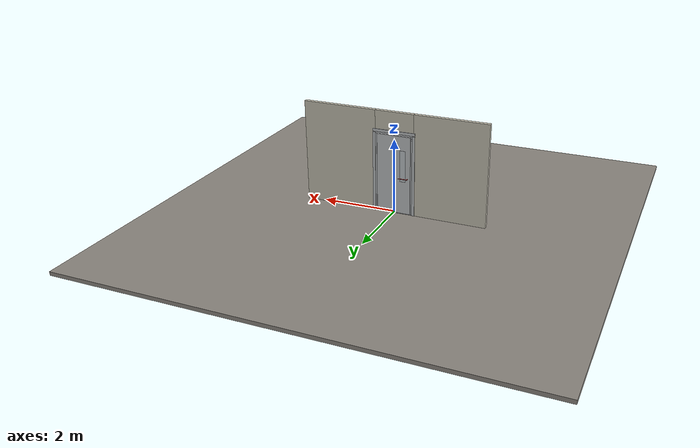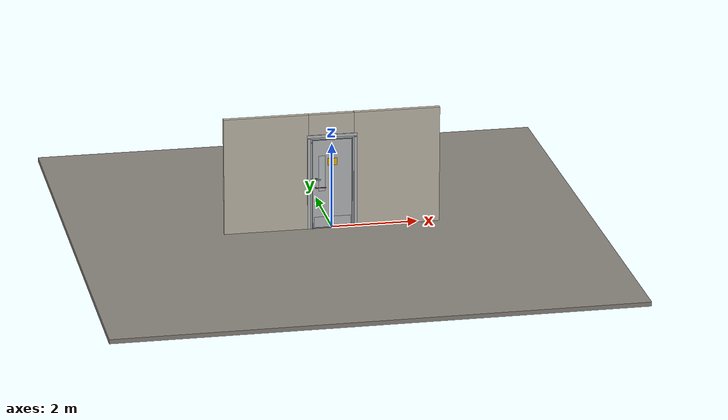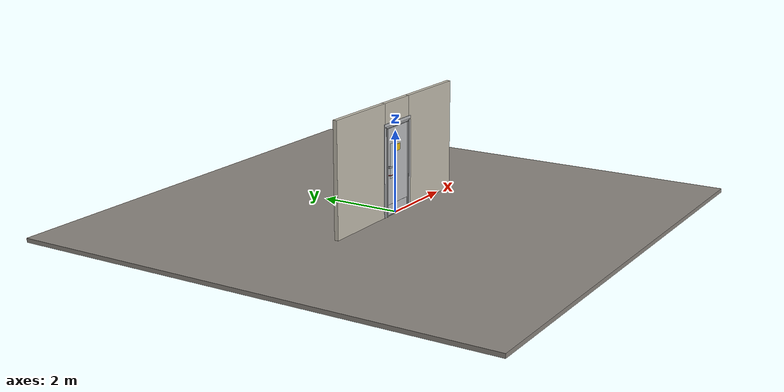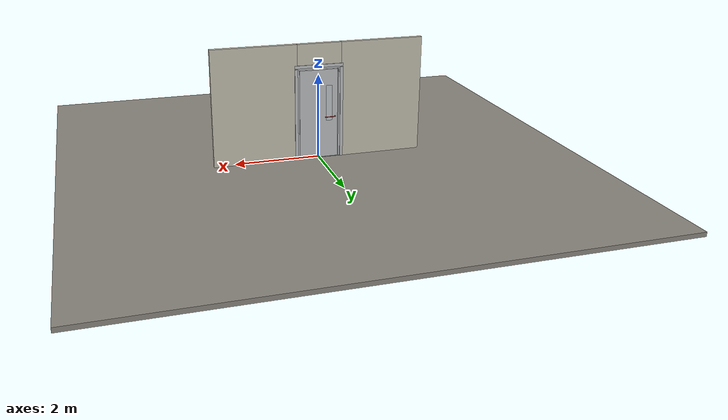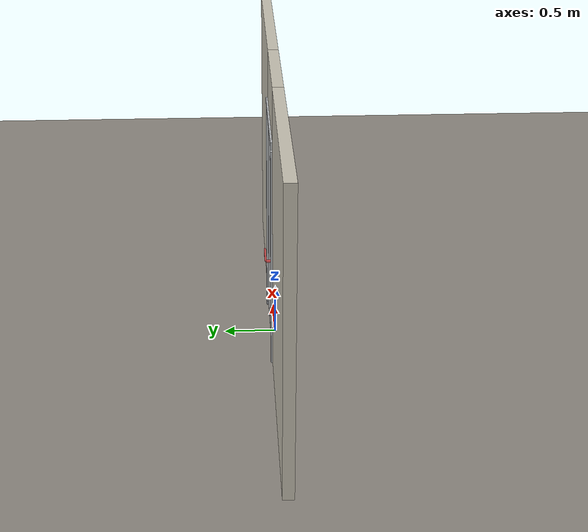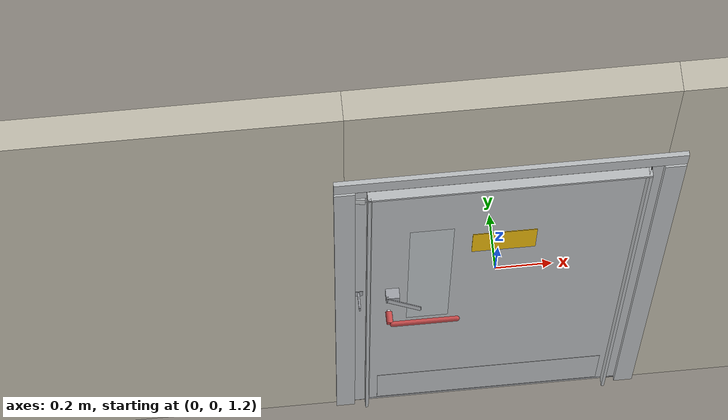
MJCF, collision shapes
<?xml version="1.0" ?>
<mujoco model="db0865_cold_storage_full">
  <compiler angle="radian" meshdir="../../hardware" texturedir="../../textures" autolimits="true" inertiafromgeom="false"/>
  <option timestep="0.002" integrator="implicitfast" cone="elliptic" impratio="10" noslip_iterations="3">
    <flag multiccd="enable"/>
  </option>
  <size memory="16M"/>
  <default>
    <geom condim="4" solref="0.005 1" solimp="0.95 0.99 0.001"/>
    <joint solreflimit="0.005 1" solimplimit="0.95 0.99 0.001"/>
    <tendon solreflimit="0.005 1"/>
    <equality solref="0.002 1"/>
  </default>
  <visual>
    <headlight ambient="0.4 0.4 0.4" diffuse="0.7 0.7 0.7" specular="0.2 0.2 0.2"/>
    <quality shadowsize="4096"/>
    <map znear="0.01" zfar="60"/>
  </visual>
  <asset>
    <mesh name="hinge_05d9a38dfa" file="hinge_05d9a38dfa.obj"/>
    <mesh name="hinge_jamb_953fb56768" file="hinge_jamb_953fb56768.obj"/>
    <mesh name="lever_40740b93f7" file="lever_40740b93f7.obj"/>
    <material name="mat_floor" rgba="0.55 0.53 0.5 1" specular="0.2" shininess="0.15" reflectance="0"/>
    <material name="mat_wall" rgba="0.78 0.76 0.7 1" specular="0.2" shininess="0.1" reflectance="0"/>
    <material name="mat_hinge" rgba="0.55 0.56 0.58 1" specular="0.8" shininess="0.55" reflectance="0.4"/>
    <material name="mat_leaf" rgba="0.75 0.76 0.77 1" specular="0.8" shininess="0.65" reflectance="0.4"/>
    <material name="mat_glass" rgba="0.85 0.92 0.95 0.25" specular="0.2" shininess="0.95" reflectance="0.1"/>
    <material name="mat_op_chrome" rgba="0.9 0.9 0.92 1" specular="0.8" shininess="0.9" reflectance="0.4"/>
    <material name="mat_trim" rgba="0.85 0.66 0.3 1" specular="0.8" shininess="0.75" reflectance="0.4"/>
    <material name="mat_bolt" rgba="0.75 0.76 0.77 1" specular="0.8" shininess="0.65" reflectance="0.4"/>
    <material name="mat_op_steel_galvanized" rgba="0.65 0.66 0.68 1" specular="0.74" shininess="0.5" reflectance="0.36"/>
    <material name="mat_padlock" rgba="0.85 0.66 0.3 1" specular="0.8" shininess="0.75" reflectance="0.4"/>
    <material name="mat_frame" rgba="0.75 0.76 0.77 1" specular="0.8" shininess="0.65" reflectance="0.4"/>
    <material name="mat_seal" rgba="0.1 0.1 0.1 1" specular="0.2" shininess="0.1" reflectance="0"/>
    <material name="mat_threshold" rgba="0.8 0.81 0.83 1" specular="0.8" shininess="0.6" reflectance="0.4"/>
    <material name="mat_kick" rgba="0.75 0.76 0.77 1" specular="0.8" shininess="0.65" reflectance="0.4"/>
    <material name="mat_placard" rgba="0.95 0.75 0.05 1" specular="0.2" shininess="0.5" reflectance="0"/>
    <texture name="skybox" type="skybox" builtin="gradient" rgb1="0.6 0.7 0.85" rgb2="0.9 0.92 0.95" width="256" height="256"/>
  </asset>
  <worldbody>
    <light name="sun" pos="1.5 -2.5 4" dir="-0.3 0.5 -0.8" directional="true" diffuse="0.8 0.8 0.8" specular="0.3 0.3 0.3" castshadow="true"/>
    <light name="fill" pos="-1.5 2.5 3" dir="0.3 -0.5 -0.7" directional="true" diffuse="0.35 0.35 0.4" castshadow="false"/>
    <camera name="robot_view" pos="0 -2.640625 1.814375" xyaxes="1 0 0 0 0.26963 0.962964" fovy="52"/>
    <camera name="far_view" pos="0 2.640625 1.814375" xyaxes="-1 0 0 0 -0.26963 0.962964" fovy="52"/>
    <camera name="iso" pos="-2.006875 -2.218125 2.236875" xyaxes="0.741536 -0.670913 0 0.242917 0.268487 0.932151" fovy="46"/>
    <camera name="detail_handle" pos="-0.003 -0.905 1.28" xyaxes="0.97561 0.219512 0 -0.070934 0.315262 0.94635" fovy="38"/>
    <geom name="floor" type="box" size="6 6 0.05" pos="0 0 -0.05" material="mat_floor" group="0" contype="1" conaffinity="1" friction="0.8 0.005 0.0001" density="2400"/>
    <geom name="wall_left" type="box" size="0.98 0.05 1.375" pos="-1.52 0 1.375" material="mat_wall" group="0" contype="1" conaffinity="1" friction="0.6 0.005 0.0001" density="800"/>
    <geom name="wall_right" type="box" size="0.995 0.05 1.375" pos="1.505 0 1.375" material="mat_wall" group="0" contype="1" conaffinity="1" friction="0.6 0.005 0.0001" density="800"/>
    <geom name="wall_header" type="box" size="0.525 0.05 0.2625" pos="-0.015 0 2.4875" material="mat_wall" group="0" contype="1" conaffinity="1" friction="0.6 0.005 0.0001" density="800"/>
    <geom name="hinge_0_jamb" type="mesh" mesh="hinge_jamb_953fb56768" pos="0.462 0.057 0.267" quat="0 0 0 1" material="mat_hinge" group="1" contype="0" conaffinity="0" density="7850"/>
    <geom name="hinge_1_jamb" type="mesh" mesh="hinge_jamb_953fb56768" pos="0.462 0.057 1.9504" quat="0 0 0 1" material="mat_hinge" group="1" contype="0" conaffinity="0" density="7850"/>
    <geom name="leaf_staple_leg_n" type="box" size="0.003 0.0025 0.03" pos="-0.492 -0.08 1.2125" quat="0 0 -0.707107 0.707107" material="mat_op_steel_galvanized" group="0" contype="1" conaffinity="1" friction="0.6 0.005 0.0001" density="7800"/>
    <geom name="leaf_staple_leg_p" type="box" size="0.003 0.0025 0.03" pos="-0.492 -0.08 1.1875" quat="0 0 -0.707107 0.707107" material="mat_op_steel_galvanized" group="0" contype="1" conaffinity="1" friction="0.6 0.005 0.0001" density="7800"/>
    <geom name="leaf_staple_bridge" type="box" size="0.003 0.015 0.0025" pos="-0.492 -0.1075 1.2" quat="0 0 -0.707107 0.707107" material="mat_op_steel_galvanized" group="0" contype="1" conaffinity="1" friction="0.6 0.005 0.0001" density="7800"/>
    <geom name="leaf_staple_base" type="box" size="0.016 0.021 0.001" pos="-0.492 -0.051 1.2" quat="0 0 -0.707107 0.707107" material="mat_op_steel_galvanized" group="1" contype="0" conaffinity="0" density="7800"/>
    <geom name="jamb_hinge" type="box" size="0.0225 0.05 1.075" pos="0.4875 0 1.075" material="mat_frame" group="0" contype="1" conaffinity="1" friction="0.6 0.005 0.0001" density="300"/>
    <geom name="strike_2080_wall_n" type="box" size="0.0375 0.02125 0.019" pos="-0.5025 -0.02875 2.0804" material="mat_frame" group="0" contype="1" conaffinity="1" friction="0.6 0.005 0.0001" density="300"/>
    <geom name="strike_2080_wall_p" type="box" size="0.0375 0.008 0.019" pos="-0.5025 0.0155 2.0804" material="mat_frame" group="0" contype="1" conaffinity="1" friction="0.6 0.005 0.0001" density="300"/>
    <geom name="strike_2080_ramp" type="box" size="0.0375 0.023512 0.019" pos="-0.505582 0.041168 2.0804" quat="0.997211 0 0 0.074638" material="mat_frame" group="0" contype="1" conaffinity="1" friction="0.12 0.005 0.0001" density="300"/>
    <geom name="strike_2080_ramp_n" type="box" size="0.0375 0.023512 0.019" pos="-0.505582 -0.029168 2.0804" quat="0.997211 0 0 -0.074638" material="mat_frame" group="0" contype="1" conaffinity="1" friction="0.12 0.005 0.0001" density="300"/>
    <geom name="strike_2080_back" type="box" size="0.0325 0.0075 0.019" pos="-0.5075 0 2.0804" material="mat_frame" group="0" contype="1" conaffinity="1" friction="0.6 0.005 0.0001" density="300"/>
    <geom name="jamb_strike_0" type="box" size="0.0375 0.05 1.0307" pos="-0.5025 0 1.0307" material="mat_frame" group="0" contype="1" conaffinity="1" friction="0.6 0.005 0.0001" density="300"/>
    <geom name="jamb_strike_1" type="box" size="0.0375 0.05 0.0253" pos="-0.5025 0 2.1247" material="mat_frame" group="0" contype="1" conaffinity="1" friction="0.6 0.005 0.0001" density="300"/>
    <geom name="jamb_head" type="box" size="0.525 0.05 0.0225" pos="-0.015 0 2.1725" material="mat_frame" group="0" contype="1" conaffinity="1" friction="0.6 0.005 0.0001" density="300"/>
    <geom name="head_stud" type="box" size="0.525 0.05 0.015" pos="-0.015 0 2.21" material="mat_wall" group="0" contype="1" conaffinity="1" friction="0.6 0.005 0.0001" density="500"/>
    <geom name="stop_hinge" type="box" size="0.0055 0.016 1.075" pos="0.4595 -0.0665 1.075" material="mat_frame" group="0" contype="1" conaffinity="1" friction="0.6 0.005 0.0001" density="300"/>
    <geom name="stop_strike" type="box" size="0.0055 0.016 1.075" pos="-0.4595 -0.0665 1.075" material="mat_frame" group="0" contype="1" conaffinity="1" friction="0.6 0.005 0.0001" density="300"/>
    <geom name="stop_head" type="box" size="0.465 0.016 0.0055" pos="0 -0.0665 2.1445" material="mat_frame" group="0" contype="1" conaffinity="1" friction="0.6 0.005 0.0001" density="300"/>
    <geom name="seal_hinge" type="box" size="0.004 0.005 1.075" pos="0.462 -0.055 1.075" material="mat_seal" group="1" contype="0" conaffinity="0" density="1100"/>
    <geom name="seal_strike" type="box" size="0.004 0.005 1.075" pos="-0.462 -0.055 1.075" material="mat_seal" group="1" contype="0" conaffinity="0" density="1100"/>
    <geom name="seal_head" type="box" size="0.445 0.005 0.008" pos="0 -0.055 2.138" material="mat_seal" group="1" contype="0" conaffinity="0" density="1100"/>
    <geom name="casing_l_n" type="box" size="0.035 0.008 1.0975" pos="-0.54 -0.058 1.075" material="mat_frame" group="2" contype="0" conaffinity="0" density="300"/>
    <geom name="casing_r_n" type="box" size="0.035 0.008 1.0975" pos="0.54 -0.058 1.075" material="mat_frame" group="2" contype="0" conaffinity="0" density="300"/>
    <geom name="casing_h_n" type="box" size="0.575 0.008 0.035" pos="0 -0.058 2.225" material="mat_frame" group="2" contype="0" conaffinity="0" density="300"/>
    <geom name="casing_l_p" type="box" size="0.035 0.008 1.0975" pos="-0.54 0.058 1.075" material="mat_frame" group="2" contype="0" conaffinity="0" density="300"/>
    <geom name="casing_r_p" type="box" size="0.035 0.008 1.0975" pos="0.54 0.058 1.075" material="mat_frame" group="2" contype="0" conaffinity="0" density="300"/>
    <geom name="casing_h_p" type="box" size="0.575 0.008 0.035" pos="0 0.058 2.225" material="mat_frame" group="2" contype="0" conaffinity="0" density="300"/>
    <geom name="threshold" type="box" size="0.51 0.05 0.0065" pos="0 0 0.0065" material="mat_threshold" group="0" contype="1" conaffinity="1" friction="0.5 0.005 0.0001" density="2700"/>
    <site name="approach_point" pos="0 -1.5 0" quat="1 0 0 0" size="0.05" rgba="0.2 0.9 0.2 0.5" group="4"/>
    <site name="goal_point" pos="0 1.5 0" quat="1 0 0 0" size="0.05" rgba="0.2 0.9 0.2 0.5" group="4"/>
    <site name="door_plane_center" pos="0 0 1.075" quat="1 0 0 0" size="0.02" rgba="0.2 0.9 0.2 0.5" group="4"/>
    <body name="leaf_riser" pos="0.465 0 0">
      <inertial pos="-0.003 0.057 0.055" mass="0.174012" quat="0 0.707107 0 0.707107" diaginertia="0.000017053 0.00002732 0.00002732"/>
      <joint name="leaf_rise" type="slide" axis="0 0 1" limited="true" range="0 0.0264" damping="1" armature="0.5"/>
      <geom name="leaf_riser_marker" type="cylinder" size="0.014 0.018" pos="-0.003 0.057 0.055" material="mat_hinge" group="1" contype="0" conaffinity="0" density="7850"/>
      <body name="leaf" pos="0 0 0">
        <inertial pos="-0.445713 -0.002012 1.024147" mass="51.398174" quat="0.49762 0.50302 -0.493805 0.505472" diaginertia="3.889118777 20.935836363 24.719636785"/>
        <joint name="leaf_hinge" type="hinge" axis="0 0 -1" pos="-0.003 0.057 0" limited="true" range="0 1.919862" solreflimit="0.02 1" damping="0.313793" frictionloss="5.176037" armature="0.02"/>
        <geom name="leaf_slab" type="box" size="0.455 0.05 1.0567" pos="-0.458 0 1.0737" material="mat_leaf" group="0" contype="1" conaffinity="1" friction="0.35 0.005 0.0001" density="1"/>
        <geom name="leaf_glass_0" type="box" size="0.075 0.0508 0.42268" pos="-0.7079 0 1.327308" material="mat_glass" group="1" contype="0" conaffinity="0" density="1"/>
        <geom name="hinge_0" type="mesh" mesh="hinge_05d9a38dfa" pos="-0.003 0.057 0.267" quat="0 0 0 1" material="mat_hinge" group="1" contype="0" conaffinity="0" density="7850"/>
        <geom name="hinge_1" type="mesh" mesh="hinge_05d9a38dfa" pos="-0.003 0.057 1.9504" quat="0 0 0 1" material="mat_hinge" group="1" contype="0" conaffinity="0" density="7850"/>
        <geom name="leaf_mag_catch_faceplate" type="box" size="0.0006 0.012 0.029" pos="-0.9124 0 2.0804" material="mat_bolt" group="1" contype="0" conaffinity="0" density="8500"/>
        <geom name="leaf_hasp_plate" type="box" size="0.024 0.0215 0.019" pos="-0.838 -0.069 1.2" quat="0 0 -0.707107 0.707107" material="mat_op_steel_galvanized" group="1" contype="0" conaffinity="0" density="7800"/>
        <geom name="kick_plate_n" type="box" size="0.425 0.0008 0.125" pos="-0.458 -0.0508 0.152" material="mat_kick" group="2" contype="0" conaffinity="0" density="7900"/>
        <geom name="warning_placard" type="box" size="0.11 0.001 0.08" pos="-0.458 -0.051 1.60205" material="mat_placard" group="2" contype="0" conaffinity="0" density="1000"/>
        <site name="leaf_edge_mid" pos="-0.913 0 1.0567" quat="1 0 0 0" size="0.02" rgba="0.2 0.9 0.2 0.5" group="4"/>
        <body name="leaf_handle" pos="-0.848 0 1">
          <inertial pos="0.046153 0 0" mass="2.987827" quat="0.707107 0 0 -0.707107" diaginertia="0.018437997 0.023746754 0.040214564"/>
          <joint name="leaf_handle_hinge" type="hinge" axis="0 1 0" limited="true" range="0 0.5" damping="0.589936" frictionloss="0.07" stiffness="2.5" springref="-0.96" armature="0.01"/>
          <geom name="leaf_handle_spindle" type="cylinder" size="0.006 0.058" pos="0 0 0" quat="0.707107 -0.707107 0 0" material="mat_op_chrome" group="1" contype="0" conaffinity="0" density="7850"/>
          <geom name="leaf_handle_lever_n" type="mesh" mesh="lever_40740b93f7" pos="0 -0.05 0" quat="0 0 -0.707107 0.707107" material="mat_op_chrome" group="1" contype="0" conaffinity="0" density="3000"/>
          <geom name="leaf_handle_lever_col_n" type="capsule" size="0.0095 0.1155" pos="0.125 -0.105 0" quat="0.707107 0 0.707107 0" material="mat_op_chrome" group="3" contype="1" conaffinity="1" rgba="0.8 0.3 0.3 0.25" friction="0.7 0.01 0.0001" density="3000"/>
          <geom name="leaf_handle_hub_col_n" type="cylinder" size="0.012 0.022" pos="0 -0.08 0" quat="0.707107 -0.707107 0 0" material="mat_op_chrome" group="3" contype="1" conaffinity="1" rgba="0.8 0.3 0.3 0.25" friction="0.6 0.005 0.0001" density="3000"/>
          <geom name="leaf_handle_lever_p" type="mesh" mesh="lever_40740b93f7" pos="0 0.05 0" quat="0 0 0.707107 0.707107" material="mat_op_chrome" group="1" contype="0" conaffinity="0" density="3000"/>
          <geom name="leaf_handle_lever_col_p" type="capsule" size="0.0095 0.1155" pos="0.125 0.105 0" quat="0.707107 0 0.707107 0" material="mat_op_chrome" group="3" contype="1" conaffinity="1" rgba="0.8 0.3 0.3 0.25" friction="0.7 0.01 0.0001" density="3000"/>
          <geom name="leaf_handle_hub_col_p" type="cylinder" size="0.012 0.022" pos="0 0.08 0" quat="0.707107 -0.707107 0 0" material="mat_op_chrome" group="3" contype="1" conaffinity="1" rgba="0.8 0.3 0.3 0.25" friction="0.6 0.005 0.0001" density="3000"/>
          <site name="leaf_handle_grip_n" pos="0.2 -0.105 0" quat="1 0 0 0" size="0.012" rgba="0.2 0.9 0.2 0.5" group="4"/>
          <site name="leaf_handle_grip_p" pos="0.2 0.105 0" quat="1 0 0 0" size="0.012" rgba="0.2 0.9 0.2 0.5" group="4"/>
        </body>
        <body name="leaf_mag_catch" pos="-0.913 0 2.0804">
          <inertial pos="0.012 0 0" mass="0.030762" quat="0 0 -0.707107 0.707107" diaginertia="0.000000526 0.000002949 0.000002949"/>
          <joint name="leaf_mag_catch_slide" type="slide" axis="1 0 0" limited="true" range="0 0.006" damping="2" frictionloss="0.3" stiffness="20000" springref="-0.006" armature="0.1"/>
          <geom name="leaf_mag_catch_capsule" type="capsule" size="0.006 0.012" pos="0.012 0 0" quat="0.707107 0 -0.707107 0" material="mat_bolt" group="0" contype="1" conaffinity="1" friction="0.2 0.005 0.0001" density="8500"/>
        </body>
        <body name="leaf_hasp" pos="-0.858 -0.088 1.2">
          <inertial pos="0.047504 -0.014824 0" mass="0.120573" quat="0.695935 0.695935 -0.125199 -0.125199" diaginertia="0.00001368 0.000185913 0.000199083"/>
          <joint name="leaf_hasp_hinge" type="hinge" axis="0 0 1" limited="true" range="0 2.9" damping="0.02" frictionloss="0.05" armature="0.005" ref="2.8"/>
          <geom name="leaf_hasp_strap" type="box" size="0.0605 0.0175 0.0015" pos="0.057507 -0.018853 0" quat="-0.696818 0.696818 -0.120185 0.120185" material="mat_op_steel_galvanized" group="0" contype="1" conaffinity="1" friction="0.6 0.005 0.0001" density="7800"/>
          <geom name="leaf_hasp_knuckle" type="cylinder" size="0.0045 0.0215" pos="0.00134 0.003769 0" quat="0.169967 0 0 0.98545" material="mat_op_steel_galvanized" group="1" contype="0" conaffinity="0" density="7850"/>
          <site name="leaf_hasp_grip" pos="0.098514 -0.024412 0" quat="0.169967 0 0 0.98545" size="0.01" rgba="0.2 0.9 0.2 0.5" group="4"/>
        </body>
      </body>
    </body>
  </worldbody>
  <equality>
    <joint name="leaf_rise_couple" joint1="leaf_rise" joint2="leaf_hinge" polycoef="0 0.007639 0 0 0" active="true"/>
  </equality>
  <sensor>
    <jointpos name="leaf_hinge_pos" joint="leaf_hinge"/>
    <jointvel name="leaf_hinge_vel" joint="leaf_hinge"/>
    <jointpos name="leaf_handle_hinge_pos" joint="leaf_handle_hinge"/>
    <jointvel name="leaf_handle_hinge_vel" joint="leaf_handle_hinge"/>
    <jointpos name="leaf_mag_catch_slide_pos" joint="leaf_mag_catch_slide"/>
    <jointvel name="leaf_mag_catch_slide_vel" joint="leaf_mag_catch_slide"/>
    <jointpos name="leaf_hasp_hinge_pos" joint="leaf_hasp_hinge"/>
    <jointvel name="leaf_hasp_hinge_vel" joint="leaf_hasp_hinge"/>
  </sensor>
</mujoco>
